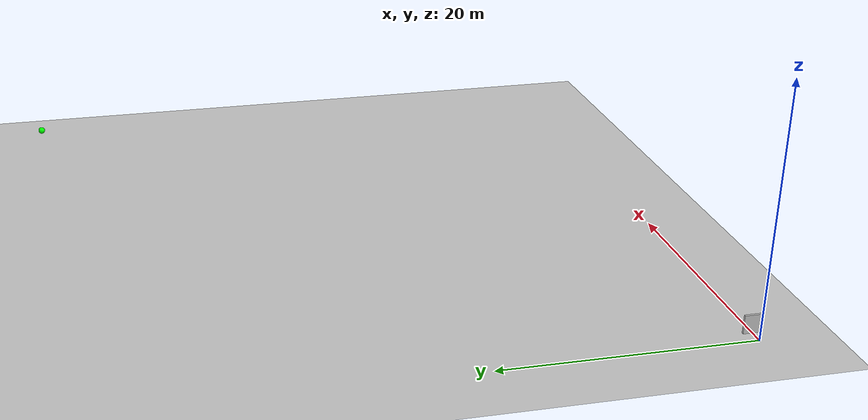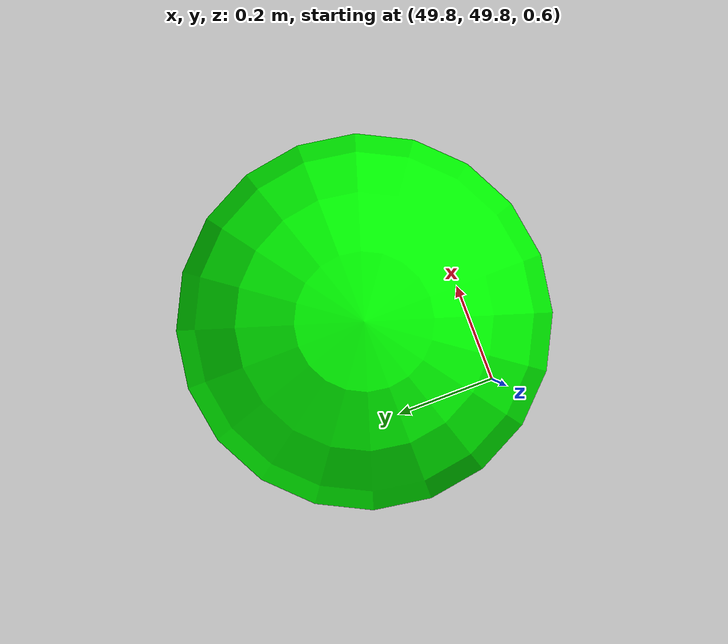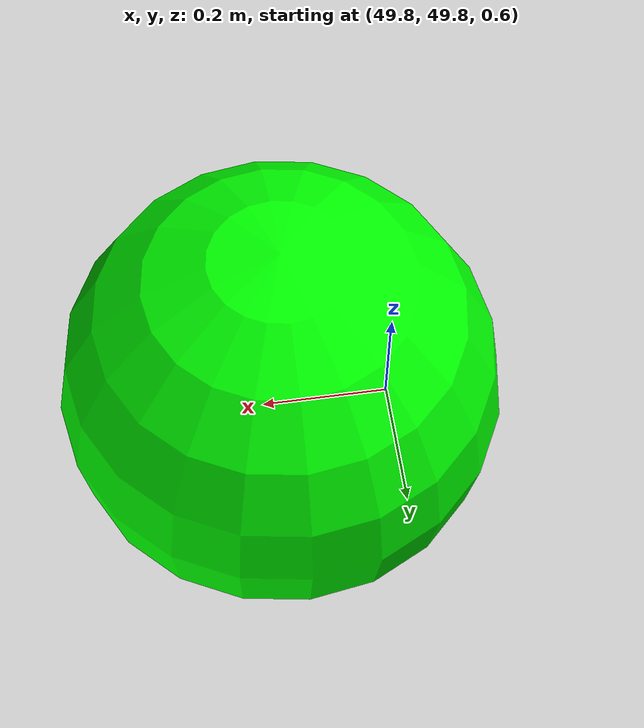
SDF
<?xml version="1.0"?>
<sdf version="1.9">
  <world name="a300_test">
    <gravity>0 0 -9.81</gravity>
    <plugin filename="gz-sim-physics-system" name="gz::sim::systems::Physics"/>
    <plugin filename="gz-sim-user-commands-system" name="gz::sim::systems::UserCommands"/>
    <plugin filename="gz-sim-scene-broadcaster-system" name="gz::sim::systems::SceneBroadcaster"/>
    <plugin filename="gz-sim-sensors-system" name="gz::sim::systems::Sensors"><render_engine>ogre2</render_engine></plugin>
    <light name="sun" type="directional"><cast_shadows>true</cast_shadows><pose>0 0 10 0 0 0</pose><diffuse>0.8 0.8 0.8 1</diffuse><specular>0.2 0.2 0.2 1</specular><direction>-0.4 0.2 -1.0</direction></light>
    <model name="ground"><static>true</static><link name="link">
      <collision name="collision"><geometry><plane><normal>0 0 1</normal><size>50 50</size></plane></geometry></collision>
      <visual name="visual"><geometry><plane><normal>0 0 1</normal><size>50 50</size></plane></geometry></visual>
    </link></model>
  <model name="wall_ahead"><static>true</static><link name="link">
    <collision name="collision"><geometry><box><size>0.2 1.5 1.5</size></box></geometry></collision>
    <visual name="visual"><geometry><box><size>0.2 1.5 1.5</size></box></geometry></visual><pose>1.2 0 0.75 0 0 0</pose>
  </link></model>
  <model name="status_green"><static>true</static><link name="link">
    <visual name="visual">
      <geometry><sphere><radius>0.30</radius></sphere></geometry>
      <material><ambient>0 1 0 1</ambient><diffuse>0 1 0 1</diffuse></material>
    </visual>
  </link><pose>50 50 1.0 0 0 0</pose></model>
  <model name="status_yellow"><static>true</static><link name="link">
    <visual name="visual">
      <geometry><sphere><radius>0.30</radius></sphere></geometry>
      <material><ambient>1 1 0 1</ambient><diffuse>1 1 0 1</diffuse></material>
    </visual>
  </link><pose>50 50 1.0 0 0 0</pose></model>
  <model name="status_orange"><static>true</static><link name="link">
    <visual name="visual">
      <geometry><sphere><radius>0.30</radius></sphere></geometry>
      <material><ambient>1 0.5 0 1</ambient><diffuse>1 0.5 0 1</diffuse></material>
    </visual>
  </link><pose>50 50 1.0 0 0 0</pose></model>
  <model name="status_red"><static>true</static><link name="link">
    <visual name="visual">
      <geometry><sphere><radius>0.30</radius></sphere></geometry>
      <material><ambient>1 0 0 1</ambient><diffuse>1 0 0 1</diffuse></material>
    </visual>
  </link><pose>50 50 1.0 0 0 0</pose></model>
</world>
</sdf>
